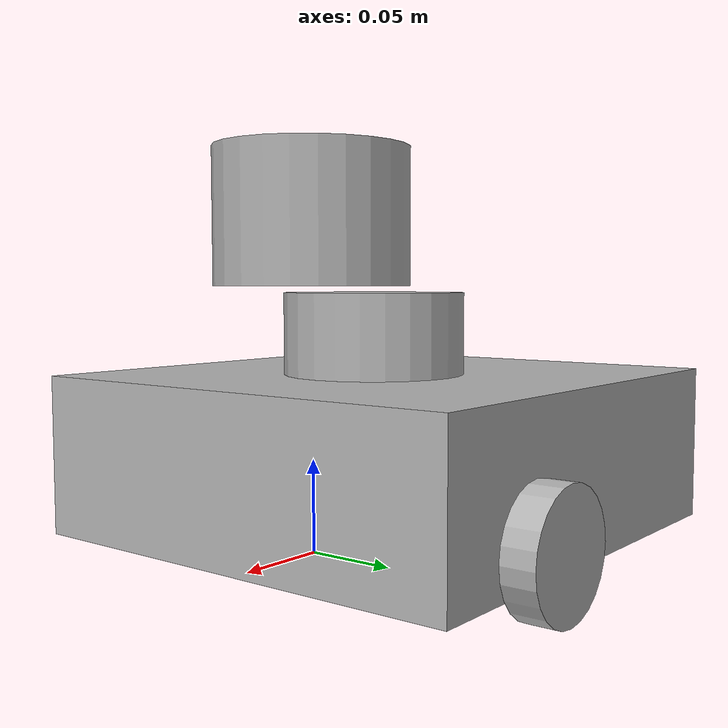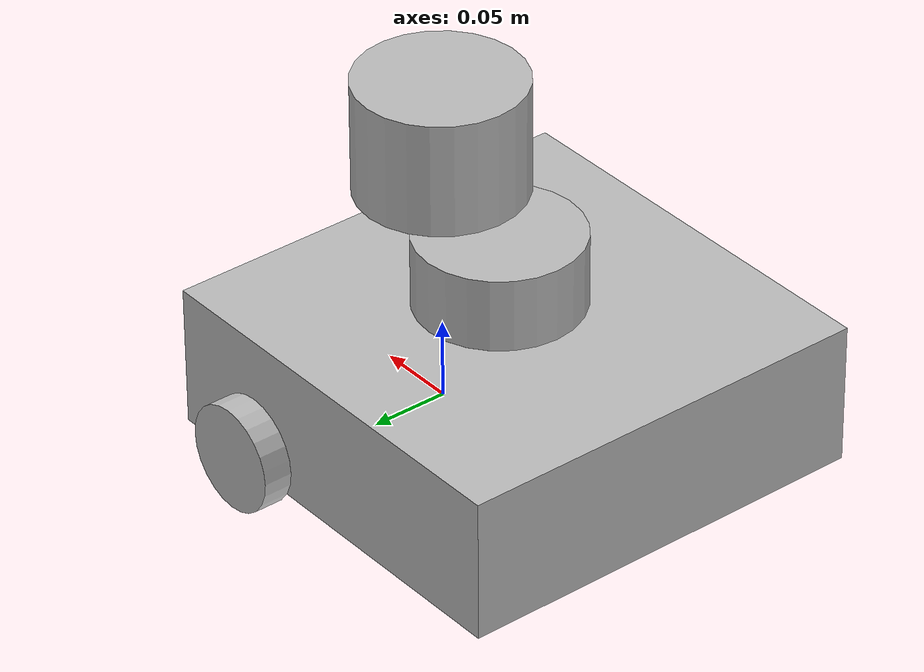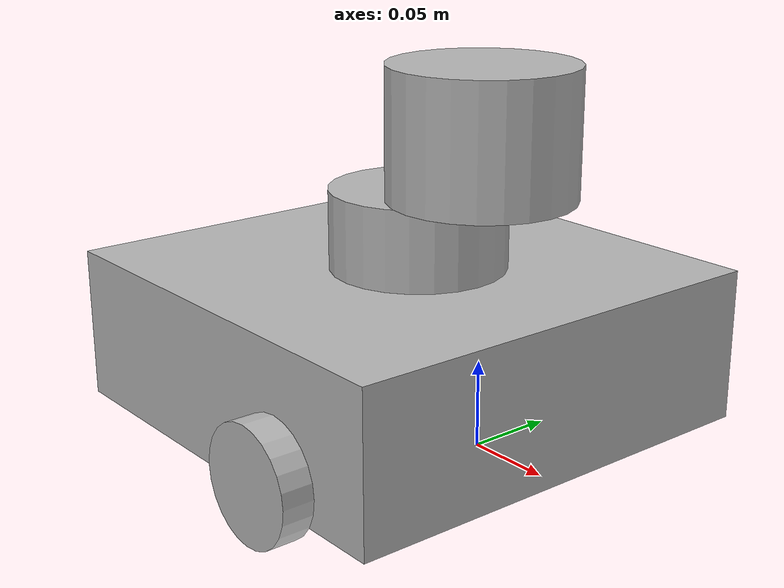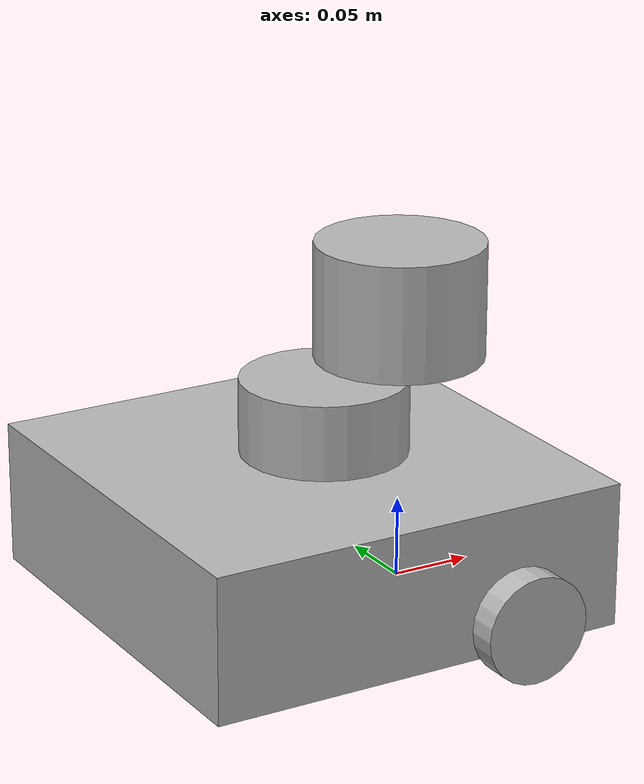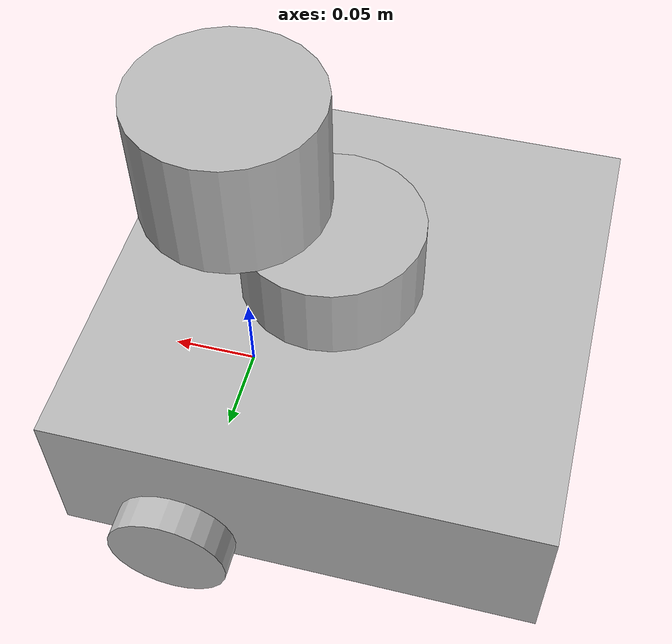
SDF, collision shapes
<?xml version="1.0" ?>
<sdf version="1.5">
  <model name="turtlebot3_waffle_velodyne">
  <pose>0.0 0.0 0.0 0.0 0.0 0.0</pose>

    <link name="base_footprint"/>

    <link name="base_link">

      <inertial>
        <pose>-0.064 0 0.048 0 0 0</pose>
        <inertia>
          <ixx>4.2111447e-02</ixx>
          <ixy>0</ixy>
          <ixz>0</ixz>
          <iyy>4.2111447e-02</iyy>
          <iyz>0</iyz>
          <izz>7.5254874e-02</izz>
        </inertia>
        <mass>1.3729096e+00</mass>
      </inertial>

      <collision name="base_collision">
        <pose>-0.064 0 0.048 0 0 0</pose>
        <geometry>
          <box>
            <size>0.265 0.265 0.089</size>
          </box>
        </geometry>
      </collision>

      <visual name="base_visual">
        <pose>-0.064 0 0 0 0 0</pose>
        <geometry>
          <mesh>
            <uri>model://turtlebot3_common/meshes/waffle_base.dae</uri>
            <scale>0.001 0.001 0.001</scale>
          </mesh>
        </geometry>
      </visual>
    </link>

    <link name="imu_link">
      <sensor name="tb3_imu" type="imu">
        <always_on>true</always_on>
        <update_rate>200</update_rate>
        <imu>
          <angular_velocity>
            <x>
              <noise type="gaussian">
                <mean>0.0</mean>
                <stddev>2e-4</stddev>
              </noise>
            </x>
            <y>
              <noise type="gaussian">
                <mean>0.0</mean>
                <stddev>2e-4</stddev>
              </noise>
            </y>
            <z>
              <noise type="gaussian">
                <mean>0.0</mean>
                <stddev>2e-4</stddev>
              </noise>
            </z>
          </angular_velocity>
          <linear_acceleration>
            <x>
              <noise type="gaussian">
                <mean>0.0</mean>
                <stddev>1.7e-2</stddev>
              </noise>
            </x>
            <y>
              <noise type="gaussian">
                <mean>0.0</mean>
                <stddev>1.7e-2</stddev>
              </noise>
            </y>
            <z>
              <noise type="gaussian">
                <mean>0.0</mean>
                <stddev>1.7e-2</stddev>
              </noise>
            </z>
          </linear_acceleration>
        </imu>
        <plugin name="turtlebot3_imu" filename="libgazebo_ros_imu_sensor.so">
          <ros>
            <remapping>~/out:=imu</remapping>
          </ros>
        </plugin>
      </sensor>
    </link>

   <link name="base_scan">
      <inertial>
        <pose>-0.052 0 0.111 0 0 0</pose>
        <inertia>
          <ixx>0.001</ixx>
          <ixy>0.000</ixy>
          <ixz>0.000</ixz>
          <iyy>0.001</iyy>
          <iyz>0.000</iyz>
          <izz>0.001</izz>
        </inertia>
        <mass>0.114</mass>
      </inertial>

      <collision name="lidar_sensor_collision">
        <pose>-0.052 0 0.111 0 0 0</pose>
        <geometry>
          <cylinder>
            <radius>0.0508</radius>
            <length>0.055</length>
          </cylinder>
        </geometry>
      </collision>

      <visual name="lidar_sensor_visual">
        <pose>-0.064 0 0.121 0 0 0</pose>
        <geometry>
          <mesh>
            <uri>model://turtlebot3_common/meshes/lds.dae</uri>
            <scale>0.001 0.001 0.001</scale>
          </mesh>
        </geometry>
      </visual>

      <sensor name="hls_lfcd_lds" type="ray">
        <always_on>true</always_on>
        <visualize>true</visualize>
        <pose>-0.064 0 0.121 0 0 0</pose>
        <update_rate>5</update_rate>
        <ray>
          <scan>
            <horizontal>
              <samples>360</samples>
              <resolution>1.000000</resolution>
              <min_angle>0.000000</min_angle>
              <max_angle>6.28318530718</max_angle>
            </horizontal>
          </scan>
          <range>
            <min>0.220000</min>
            <max>20.0</max>
            <resolution>0.015000</resolution>
          </range>
        </ray>
        <plugin name="turtlebot3_laserscan" filename="libgazebo_ros_ray_sensor.so">
          <ros>
            <remapping>~/out:=scan</remapping>
          </ros>
          <update_rate>20</update_rate>
          <output_type>sensor_msgs/LaserScan</output_type>
          <frame_name>base_scan</frame_name>
        </plugin>
      </sensor>
    </link>

    <link name="base_scan_3d">
        <pose frame=''>0 0 0.18 0 0 0</pose>
        <inertial>
          <pose frame=''>0 0 0 0 0 0</pose>
          <mass>0.8</mass>
          <inertia>
            <ixx>3.23643</ixx>
            <ixy>0.0156863</ixy>
            <ixz>0.065702</ixz>
            <iyy>3.35996</iyy>
            <iyz>-0.00821275</iyz>
            <izz>3.32745</izz>
          </inertia>
        </inertial>
        <collision name='base_scan_collision_1'>
          <pose frame=''>0 0 -0.00185 0 0 0</pose>
          <geometry>
            <cylinder>
              <length>0.0717</length>
              <radius>0.0516</radius>
            </cylinder>
          </geometry>
          <surface>
            <contact>
              <ode/>
            </contact>
            <friction>
              <ode/>
              <torsional>
                <ode/>
              </torsional>
            </friction>
            <bounce/>
          </surface>
          <max_contacts>10</max_contacts>
        </collision>
        <visual name='base_scan_visual_1'>
          <pose frame=''>0 0 -0.0377 0 0 0</pose>
          <geometry>
            <mesh>
              <scale>0.5 0.5 0.5</scale>
              <uri>model://velodyne_VLP16/meshes/VLP16_base_1.dae</uri>
            </mesh>
          </geometry>
          <material>
            <script>
              <uri>__default__</uri>
              <name>__default__</name>
            </script>
          </material>
        </visual>
        <visual name='base_footprint_visual_2'>
          <pose frame=''>0 0 -0.0377 0 0 0</pose>
          <geometry>
            <mesh>
              <scale>0.5 0.5 0.5</scale>
              <uri>model://velodyne_VLP16/meshes/VLP16_base_2.dae</uri>
            </mesh>
          </geometry>
          <material>
            <script>
              <uri>__default__</uri>
              <name>__default__</name>
            </script>
          </material>
        </visual>
        <visual name='base_footprint_visual_3'>
          <pose frame=''>0 0 -0.0377 0 0 0</pose>
          <geometry>
            <mesh>
              <scale>0.5 0.5 0.5</scale>
              <uri>model://velodyne_VLP16/meshes/VLP16_scan.dae</uri>
            </mesh>
          </geometry>
          <material>
            <script>
              <uri>__default__</uri>
              <name>__default__</name>
            </script>
          </material>
        </visual>
        <sensor name='velodyne-VLP16' type='gpu_ray'>
          <visualize>0</visualize>
          <update_rate>10</update_rate>
          <ray>
            <scan>
              <horizontal>
                <samples>1875</samples>
                <resolution>1</resolution>
                <min_angle>-3.14159</min_angle>
                <max_angle>3.14159</max_angle>
              </horizontal>
              <vertical>
                <samples>16</samples>
                <resolution>1</resolution>
                <min_angle>-0.261799</min_angle>
                <max_angle>0.261799</max_angle>
              </vertical>
            </scan>
            <range>
              <min>0.055</min>
              <max>70</max>
              <resolution>0.02</resolution>
            </range>
            <noise>
              <type>gaussian</type>
              <mean>0</mean>
              <stddev>0</stddev>
            </noise>
          </ray>
          <plugin name='gazebo_ros_laser_controller' filename='libgazebo_ros_velodyne_laser.so'>
            <ros>
              <remapping>~/out:=velodyne_points</remapping>
            </ros>
            <topicName>velodyne_points</topicName>
            <frameName>base_scan</frameName>
            <min_range>0.9</min_range>
            <max_range>130.0</max_range>
            <gaussianNoise>0.008</gaussianNoise>
            <robotNamespace>/</robotNamespace>
          </plugin>
          <pose frame=''>0 0 -0.02 0 0 0</pose>

          <plugin name="gazebo_2d_laserscan" filename="libgazebo_ros_ray_sensor.so">
            <ros>
              <remapping>/outtmp:=scan</remapping>
            </ros>
            <output_type>sensor_msgs/LaserScan</output_type>
            <frame_name>base_scan_3d</frame_name>
          </plugin>

        </sensor>
        <gravity>0</gravity>
        <self_collide>0</self_collide>
        <kinematic>0</kinematic>
      </link>

    <link name="wheel_left_link">

      <inertial>
        <pose>0.0 0.144 0.023 -1.57 0 0</pose>
        <inertia>
          <ixx>1.1175580e-05</ixx>
          <ixy>-4.2369783e-11</ixy>
          <ixz>-5.9381719e-09</ixz>
          <iyy>1.1192413e-05</iyy>
          <iyz>-1.4400107e-11</iyz>
          <izz>2.0712558e-05</izz>
        </inertia>
        <mass>0.1</mass>
      </inertial>

      <collision name="wheel_left_collision">
        <pose>0.0 0.144 0.023 -1.57 0 0</pose>
        <geometry>
          <cylinder>
            <radius>0.033</radius>
            <length>0.018</length>
          </cylinder>
        </geometry>
        <surface>
          <!-- This friction pamareter don't contain reliable data!! -->
          <friction>
            <ode>
              <mu>100000.0</mu>
              <mu2>100000.0</mu2>
              <fdir1>0 0 0</fdir1>
              <slip1>0.0</slip1>
              <slip2>0.0</slip2>
            </ode>
          </friction>
          <contact>
            <ode>
              <soft_cfm>0</soft_cfm>
              <soft_erp>0.2</soft_erp>
              <kp>1e+5</kp>
              <kd>1</kd>
              <max_vel>0.01</max_vel>
              <min_depth>0.001</min_depth>
            </ode>
          </contact>
        </surface>
      </collision>

      <visual name="wheel_left_visual">
        <pose>0.0 0.144 0.023 0 0 0</pose>
        <geometry>
          <mesh>
            <uri>model://turtlebot3_common/meshes/tire.dae</uri>
            <scale>0.001 0.001 0.001</scale>
          </mesh>
        </geometry>
      </visual>
    </link>

    <link name="wheel_right_link">

      <inertial>
        <pose>0.0 -0.144 0.023 -1.57 0 0</pose>
        <inertia>
          <ixx>1.1175580e-05</ixx>
          <ixy>-4.2369783e-11</ixy>
          <ixz>-5.9381719e-09</ixz>
          <iyy>1.1192413e-05</iyy>
          <iyz>-1.4400107e-11</iyz>
          <izz>2.0712558e-05</izz>
        </inertia>
        <mass>0.1</mass>
      </inertial>

      <collision name="wheel_right_collision">
        <pose>0.0 -0.144 0.023 -1.57 0 0</pose>
        <geometry>
          <cylinder>
            <radius>0.033</radius>
            <length>0.018</length>
          </cylinder>
        </geometry>
        <surface>
          <!-- This friction pamareter don't contain reliable data!! -->
          <friction>
            <ode>
              <mu>100000.0</mu>
              <mu2>100000.0</mu2>
              <fdir1>0 0 0</fdir1>
              <slip1>0.0</slip1>
              <slip2>0.0</slip2>
            </ode>
          </friction>
          <contact>
            <ode>
              <soft_cfm>0</soft_cfm>
              <soft_erp>0.2</soft_erp>
              <kp>1e+5</kp>
              <kd>1</kd>
              <max_vel>0.01</max_vel>
              <min_depth>0.001</min_depth>
            </ode>
          </contact>
        </surface>
      </collision>

      <visual name="wheel_right_visual">
        <pose>0.0 -0.144 0.023 0 0 0</pose>
        <geometry>
          <mesh>
            <uri>model://turtlebot3_common/meshes/tire.dae</uri>
            <scale>0.001 0.001 0.001</scale>
          </mesh>
        </geometry>
      </visual>
    </link>

    <link name='caster_back_right_link'>
      <pose>-0.177 -0.064 -0.004 -1.57 0 0</pose>
      <inertial>
        <mass>0.001</mass>
        <inertia>
          <ixx>0.00001</ixx>
          <ixy>0.000</ixy>
          <ixz>0.000</ixz>
          <iyy>0.00001</iyy>
          <iyz>0.000</iyz>
          <izz>0.00001</izz>
        </inertia>
      </inertial>
      <collision name='collision'>
        <geometry>
          <sphere>
            <radius>0.005000</radius>
          </sphere>
        </geometry>
        <surface>
          <contact>
            <ode>
              <soft_cfm>0</soft_cfm>
              <soft_erp>0.2</soft_erp>
              <kp>1e+5</kp>
              <kd>1</kd>
              <max_vel>0.01</max_vel>
              <min_depth>0.001</min_depth>
            </ode>
          </contact>
        </surface>
      </collision>
    </link>

    <link name='caster_back_left_link'>
      <pose>-0.177 0.064 -0.004 -1.57 0 0</pose>
      <inertial>
        <mass>0.001</mass>
        <inertia>
          <ixx>0.00001</ixx>
          <ixy>0.000</ixy>
          <ixz>0.000</ixz>
          <iyy>0.00001</iyy>
          <iyz>0.000</iyz>
          <izz>0.00001</izz>
        </inertia>
      </inertial>
      <collision name='collision'>
        <geometry>
          <sphere>
            <radius>0.005000</radius>
          </sphere>
        </geometry>
        <surface>
          <contact>
            <ode>
              <soft_cfm>0</soft_cfm>
              <soft_erp>0.2</soft_erp>
              <kp>1e+5</kp>
              <kd>1</kd>
              <max_vel>0.01</max_vel>
              <min_depth>0.001</min_depth>
            </ode>
          </contact>
        </surface>
      </collision>
    </link>

    <link name="camera_link"/>

    <link name="camera_rgb_frame">
      <inertial>
        <pose>0.069 -0.047 0.107 0 0 0</pose>
        <inertia>
          <ixx>0.001</ixx>
          <ixy>0.000</ixy>
          <ixz>0.000</ixz>
          <iyy>0.001</iyy>
          <iyz>0.000</iyz>
          <izz>0.001</izz>
        </inertia>
        <mass>0.035</mass>
      </inertial>

      <pose>0.069 -0.047 0.107 0 0 0</pose>
      <sensor name="camera" type="camera">
        <always_on>true</always_on>
        <visualize>true</visualize>
        <update_rate>30</update_rate>
        <camera name="intel_realsense_r200">
          <horizontal_fov>1.02974</horizontal_fov>
          <image>
            <width>1920</width>
            <height>1080</height>
            <format>R8G8B8</format>
          </image>
          <clip>
            <near>0.02</near>
            <far>300</far>
          </clip>
          <noise>
            <type>gaussian</type>
            <mean>0.0</mean>
            <stddev>0.007</stddev>
          </noise>
        </camera>
          <plugin name="camera_driver" filename="libgazebo_ros_camera.so">
            <ros>
            </ros>
          </plugin>
      </sensor>
    </link>

    <joint name="base_joint" type="fixed">
      <parent>base_footprint</parent>
      <child>base_link</child>
      <pose>0.0 0.0 0.010 0 0 0</pose>
    </joint>

    <joint name="wheel_left_joint" type="revolute">
      <parent>base_link</parent>
      <child>wheel_left_link</child>
      <pose>0.0 0.144 0.023 -1.57 0 0</pose>
      <axis>
        <xyz>0 0 1</xyz>
      </axis>
    </joint>

    <joint name="wheel_right_joint" type="revolute">
      <parent>base_link</parent>
      <child>wheel_right_link</child>
      <pose>0.0 -0.144 0.023 -1.57 0 0</pose>
      <axis>
        <xyz>0 0 1</xyz>
      </axis>
    </joint>

    <joint name='caster_back_right_joint' type='ball'>
      <parent>base_link</parent>
      <child>caster_back_right_link</child>
    </joint>

    <joint name='caster_back_left_joint' type='ball'>
      <parent>base_link</parent>
      <child>caster_back_left_link</child>
    </joint>

    <joint name="imu_joint" type="fixed">
      <parent>base_link</parent>
      <child>imu_link</child>
      <pose>-0.032 0 0.068 0 0 0</pose>
      <axis>
        <xyz>0 0 1</xyz>
      </axis>
    </joint>

    <joint name="lidar_joint" type="fixed">
      <parent>base_link</parent>
      <child>base_scan</child>
      <pose>-0.064 0 0.121 0 0 0</pose>
      <axis>
        <xyz>0 0 1</xyz>
      </axis>
    </joint>

    <joint name="lidar_joint_3d" type="fixed">
      <parent>base_link</parent>
      <child>base_scan_3d</child>
      <pose>-0.064 0 0.121 0 0 0</pose>
      <axis>
        <xyz>0 0 1</xyz>
      </axis>
    </joint>

    <joint name="camera_joint" type="fixed">
      <parent>base_link</parent>
      <child>camera_link</child>
      <pose>0.064 -0.065 0.094 0 0 0</pose>
      <axis>
        <xyz>0 0 1</xyz>
      </axis>
    </joint>

    <joint name="camera_rgb_joint" type="fixed">
      <parent>camera_link</parent>
      <child>camera_rgb_frame</child>
      <pose>0.005 0.018 0.013 0 0 0</pose>
      <axis>
        <xyz>0 0 1</xyz>
      </axis>
    </joint>

    <plugin name="turtlebot3_diff_drive" filename="libgazebo_ros_diff_drive.so">

      <ros>
      </ros>

      <update_rate>30</update_rate>

      <!-- wheels -->
      <left_joint>wheel_left_joint</left_joint>
      <right_joint>wheel_right_joint</right_joint>

      <!-- kinematics -->
      <wheel_separation>0.287</wheel_separation>
      <wheel_diameter>0.066</wheel_diameter>

      <!-- limits -->
      <max_wheel_torque>30</max_wheel_torque>
      <max_wheel_acceleration>2.0</max_wheel_acceleration>

      <command_topic>cmd_vel</command_topic>

      <!-- output -->
      <publish_odom>true</publish_odom>
      <publish_odom_tf>true</publish_odom_tf>
      <publish_wheel_tf>false</publish_wheel_tf>

      <odometry_topic>odom</odometry_topic>
      <odometry_frame>odom</odometry_frame>
      <robot_base_frame>base_footprint</robot_base_frame>

    </plugin>

    <plugin name="turtlebot3_joint_state" filename="libgazebo_ros_joint_state_publisher.so">
      <ros>
        <remapping>~/out:=joint_states</remapping>
      </ros>
      <update_rate>30</update_rate>
      <joint_name>wheel_left_joint</joint_name>
      <joint_name>wheel_right_joint</joint_name>
    </plugin>

  </model>
</sdf>
